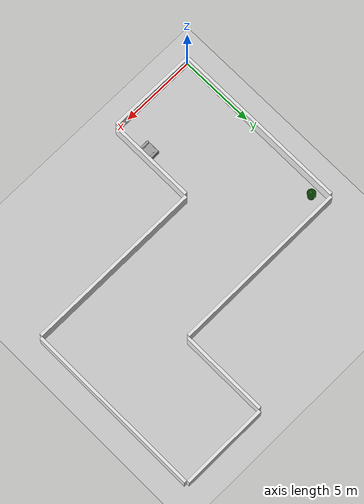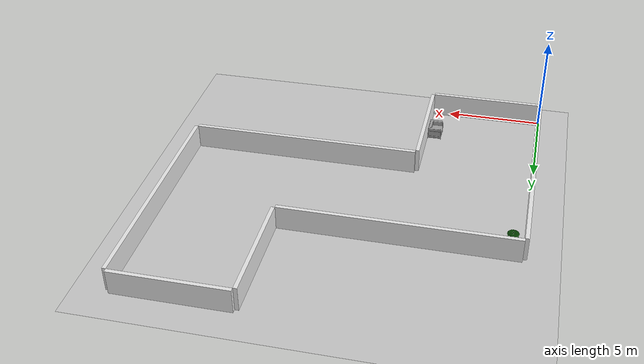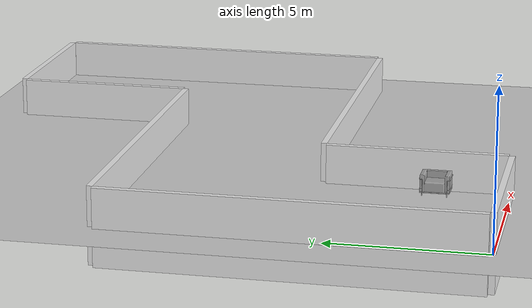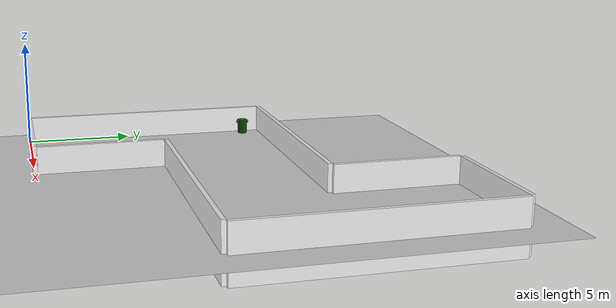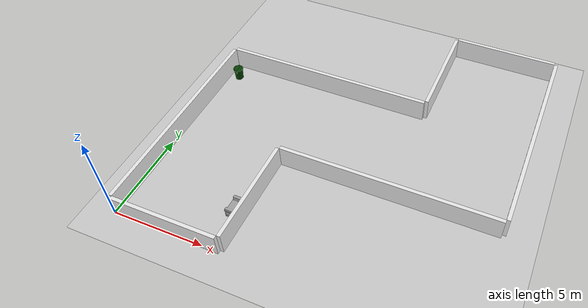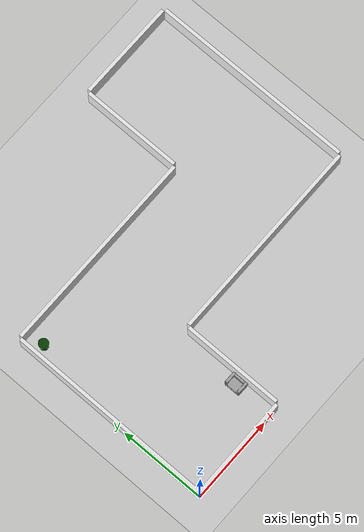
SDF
<sdf version="1.6">
 <world name="default">
  <scene><shadows>0</shadows><ambient>0.4 0.4 0.4 1</ambient><background>0.7 0.7 0.7 1</background></scene>
  <light name="sun" type="directional">
   <cast_shadows>0</cast_shadows>
   <pose>0 0 5 0 -0 0</pose>
   <diffuse>0.8 0.8 0.8 1</diffuse>
   <specular>0.1 0.1 0.1 1</specular>
   <attenuation>
    <range>1000</range>
    <constant>0.9</constant>
    <linear>0.01</linear>
    <quadratic>0.001</quadratic>
   </attenuation>
   <direction>-0.5 0.5 -1</direction>
  </light>
  <physics name="default_physics" default="0" type="ode">
   <max_step_size>0.001</max_step_size>
   <real_time_factor>1</real_time_factor>
   <real_time_update_rate>1000</real_time_update_rate>
  </physics>
  <scene><ambient>0.4 0.4 0.4 1</ambient><background>0.7 0.7 0.7 1</background><shadows>1</shadows></scene>
  <spherical_coordinates>
   <surface_model>EARTH_WGS84</surface_model>
   <latitude_deg>0</latitude_deg>
   <longitude_deg>0</longitude_deg>
   <elevation>0</elevation>
   <heading_deg>0</heading_deg>
  </spherical_coordinates>
  <model name="ground_plane">
   <static>1</static>
   <link name="link">
    <collision name="collision">
     <geometry><plane><normal>0 0 1</normal><size>100 100</size></plane></geometry>
     <surface><friction><ode><mu>1</mu><mu2>1</mu2></ode></friction></surface>
    </collision>
    <visual name="visual">
     <cast_shadows>0</cast_shadows>
     <geometry><plane><normal>0 0 1</normal><size>100 100</size></plane></geometry>
     <material>
      <script><uri>file://media/materials/scripts/gazebo.material</uri><name>Gazebo/Grey</name></script>
     </material>
    </visual>
    <velocity_decay><linear>0</linear><angular>0</angular></velocity_decay>
   </link>
  </model>
  <gravity>0 0 -9.8</gravity>
  <magnetic_field>6e-06 2.3e-05 -4.2e-05</magnetic_field>
  <atmosphere type="adiabatic"/>
  <model name="office_env_w_complete">
   <pose>0.019252 0.030074 0 0 -0 0</pose>
   <link name="Wall_0">
    <pose>3 0 0 0 -0 0</pose>
    <visual name="Wall_0_Visual_0">
     <geometry><box><size>5.8 0.2 2.5</size></box></geometry>
     <material>
      <script>
       <uri>model://office_env_w/materials/scripts</uri>
       <uri>model://office_env_w/materials/textures</uri>
       <name>wall_white</name>
      </script>
     </material>
     <meta><layer>0</layer></meta>
    </visual>
    <collision name="Wall_0_Collision_0"><geometry><box><size>5.8 0.2 2.5</size></box></geometry></collision>
   </link>
   <link name="Wall_1">
    <pose>6 3 0 0 -0 1.57</pose>
    <visual name="Wall_1_Visual_0">
     <geometry><box><size>5.8 0.2 2.5</size></box></geometry>
     <material>
      <script>
       <uri>model://office_env_w/materials/scripts</uri>
       <uri>model://office_env_w/materials/textures</uri>
       <name>wall_white</name>
      </script>
     </material>
     <meta><layer>0</layer></meta>
    </visual>
    <collision name="Wall_1_Collision_0"><geometry><box><size>5.8 0.2 2.5</size></box></geometry></collision>
   </link>
   <link name="Wall_2">
    <pose>12 6 0 0 -0 0</pose>
    <visual name="Wall_2_Visual_0">
     <geometry><box><size>11.8 0.2 2.5</size></box></geometry>
     <material>
      <script>
       <uri>model://office_env_w/materials/scripts</uri>
       <uri>model://office_env_w/materials/textures</uri>
       <name>wall_white</name>
      </script>
     </material>
     <meta><layer>0</layer></meta>
    </visual>
    <collision name="Wall_2_Collision_0"><geometry><box><size>11.8 0.2 2.5</size></box></geometry></collision>
   </link>
   <link name="Wall_3">
    <pose>18 12 0 0 -0 1.57</pose>
    <visual name="Wall_3_Visual_0">
     <geometry><box><size>11.8 0.2 2.5</size></box></geometry>
     <material>
      <script>
       <uri>model://office_env_w/materials/scripts</uri>
       <uri>model://office_env_w/materials/textures</uri>
       <name>wall_white</name>
      </script>
     </material>
     <meta><layer>0</layer></meta>
    </visual>
    <collision name="Wall_3_Collision_0"><geometry><box><size>11.8 0.2 2.5</size></box></geometry></collision>
   </link>
   <link name="Wall_4">
    <pose>15 18 0 0 -0 0</pose>
    <visual name="Wall_4_Visual_0">
     <geometry><box><size>5.8 0.2 2.5</size></box></geometry>
     <material>
      <script>
       <uri>model://office_env_w/materials/scripts</uri>
       <uri>model://office_env_w/materials/textures</uri>
       <name>wall_white</name>
      </script>
     </material>
     <meta><layer>0</layer></meta>
    </visual>
    <collision name="Wall_4_Collision_0"><geometry><box><size>5.8 0.2 2.5</size></box></geometry></collision>
   </link>
   <link name="Wall_5">
    <pose>12 15 0 0 -0 1.57</pose>
    <visual name="Wall_5_Visual_0">
     <geometry><box><size>5.8 0.2 2.5</size></box></geometry>
     <material>
      <script>
       <uri>model://office_env_w/materials/scripts</uri>
       <uri>model://office_env_w/materials/textures</uri>
       <name>wall_white</name>
      </script>
     </material>
     <meta><layer>0</layer></meta>
    </visual>
    <collision name="Wall_5_Collision_0"><geometry><box><size>5.8 0.2 2.5</size></box></geometry></collision>
   </link>
   <link name="Wall_6">
    <pose>6 12 0 0 -0 0</pose>
    <visual name="Wall_6_Visual_0">
     <geometry><box><size>11.8 0.2 2.5</size></box></geometry>
     <material>
      <script>
       <uri>model://office_env_w/materials/scripts</uri>
       <uri>model://office_env_w/materials/textures</uri>
       <name>wall_white</name>
      </script>
     </material>
     <meta><layer>0</layer></meta>
    </visual>
    <collision name="Wall_6_Collision_0"><geometry><box><size>11.8 0.2 2.5</size></box></geometry></collision>
   </link>
   <link name="Wall_7">
    <pose>0 6 0 0 -0 1.57</pose>
    <visual name="Wall_7_Visual_0">
     <geometry><box><size>11.8 0.2 2.5</size></box></geometry>
     <material>
      <script>
       <uri>model://office_env_w/materials/scripts</uri>
       <uri>model://office_env_w/materials/textures</uri>
       <name>wall_white</name>
      </script>
     </material>
     <meta><layer>0</layer></meta>
    </visual>
    <collision name="Wall_7_Collision_0"><geometry><box><size>11.8 0.2 2.5</size></box></geometry></collision>
   </link>
   <static>1</static>
  </model>
  <model name="chair_set_1">
   <link name="link_16">
    <pose>0.07217 0.114259 -0.032065 0 -0 1.57</pose>
    <visual name="visual">
     <geometry><mesh><uri>model://chair_set_1/meshes/chair_frame.dae</uri><scale>1 1 1</scale></mesh></geometry>
     <material>
      <lighting>1</lighting>
      <ambient>0.3 0.3 0.3 1</ambient>
      <diffuse>0.7 0.7 0.7 1</diffuse>
      <specular>0.01 0.01 0.01 1</specular>
      <emissive>0 0 0 1</emissive>
      <shader type="vertex"><normal_map>__default__</normal_map></shader>
     </material>
    </visual>
    <collision name="collision">
     <geometry><mesh><uri>model://chair_set_1/meshes/chair_frame.dae</uri><scale>1 1 1</scale></mesh></geometry>
    </collision>
   </link>
   <link name="link_17">
    <pose>0.069192 0.1237 -0.032065 0 -0 1.57</pose>
    <visual name="visual">
     <geometry><mesh><uri>model://chair_set_1/meshes/chair_cushions.dae</uri><scale>1 1 1</scale></mesh></geometry>
     <material>
      <script>
       <uri>model://chair_set_1/materials/scripts</uri>
       <uri>model://chair_set_1/materials/textures</uri>
       <name>chair_set_1</name>
      </script>
     </material>
    </visual>
    <collision name="collision">
     <geometry><mesh><uri>model://chair_set_1/meshes/chair_cushions.dae</uri><scale>1 1 1</scale></mesh></geometry>
    </collision>
   </link>
   <link name="link_18">
    <pose>0.606963 -0.367766 -0.032065 0 -0 0</pose>
    <visual name="visual">
     <geometry>
      <mesh><uri>model://chair_set_1/meshes/sofa_cushions_back.dae</uri><scale>1 1 1</scale></mesh>
     </geometry>
     <material>
      <script>
       <uri>model://chair_set_1/materials/scripts</uri>
       <uri>model://chair_set_1/materials/textures</uri>
       <name>chair_set_1</name>
      </script>
     </material>
    </visual>
    <collision name="collision">
     <geometry>
      <mesh><uri>model://chair_set_1/meshes/sofa_cushions_back.dae</uri><scale>1 1 1</scale></mesh>
     </geometry>
    </collision>
   </link>
   <static>1</static>
   <pose>5.5339 2.34483 0 -0.005719 -5.2e-05 -1.57987</pose>
  </model>
  <model name="first_2015_trash_can">
   <link name="link">
    <inertial>
     <pose>0 0 0.3683 0 -0 0</pose>
     <mass>4.83076</mass>
     <inertia>
      <ixx>0.281534</ixx>
      <ixy>0</ixy>
      <ixz>0</ixz>
      <iyy>0.281534</iyy>
      <iyz>0</iyz>
      <izz>0.126223</izz>
     </inertia>
    </inertial>
    <visual name="visual">
     <geometry><mesh><uri>model://first_2015_trash_can/meshes/trash_can.dae</uri></mesh></geometry>
    </visual>
    <collision name="collision">
     <geometry><mesh><uri>model://first_2015_trash_can/meshes/trash_can.dae</uri></mesh></geometry>
    </collision>
   </link>
   <pose>0.679071 11.0086 -2e-06 -3e-06 -1.1e-05 -0.002394</pose>
  </model>
 </world>
</sdf>
